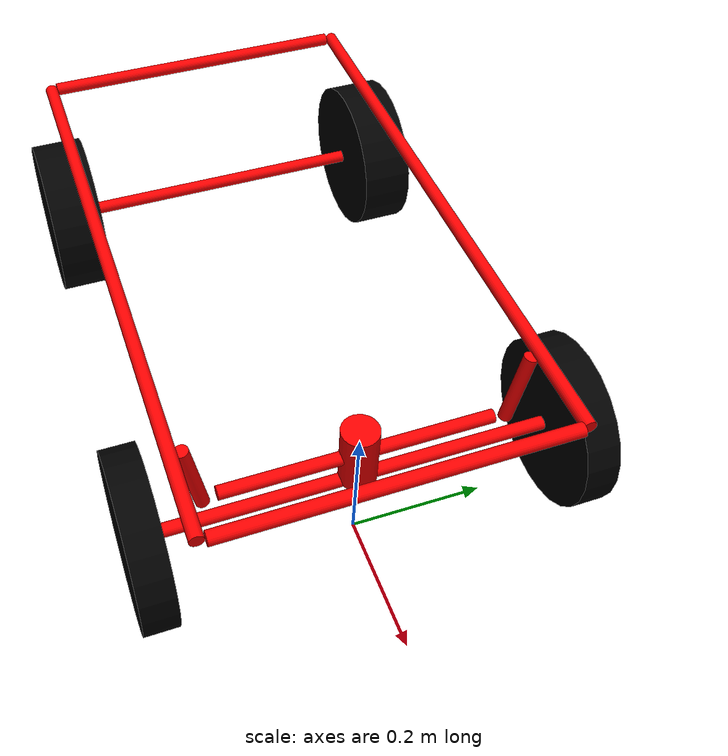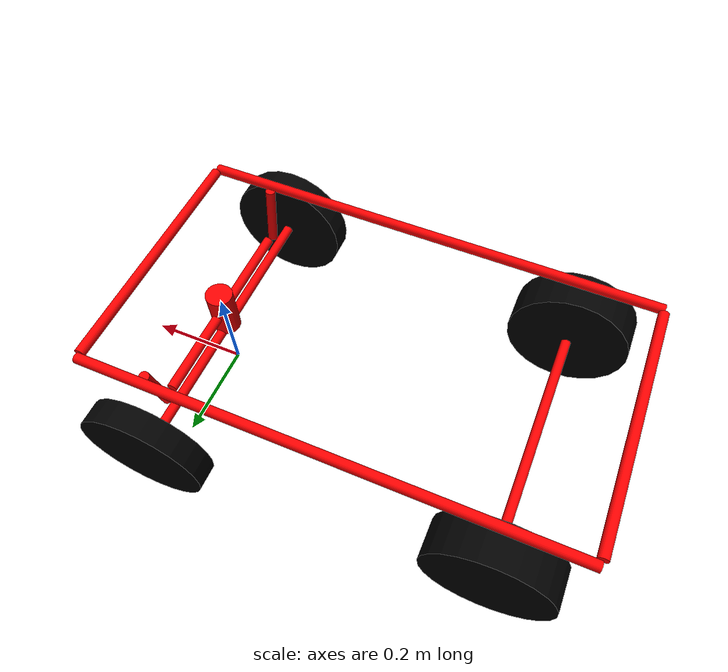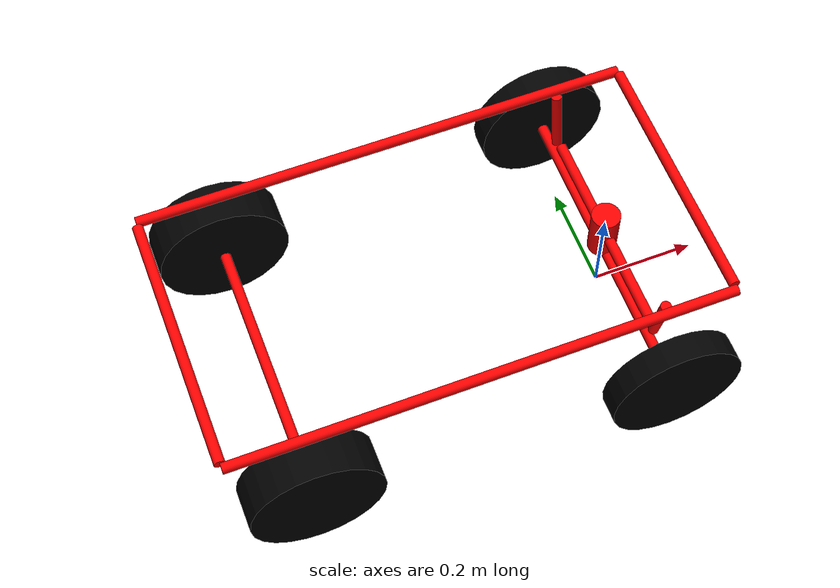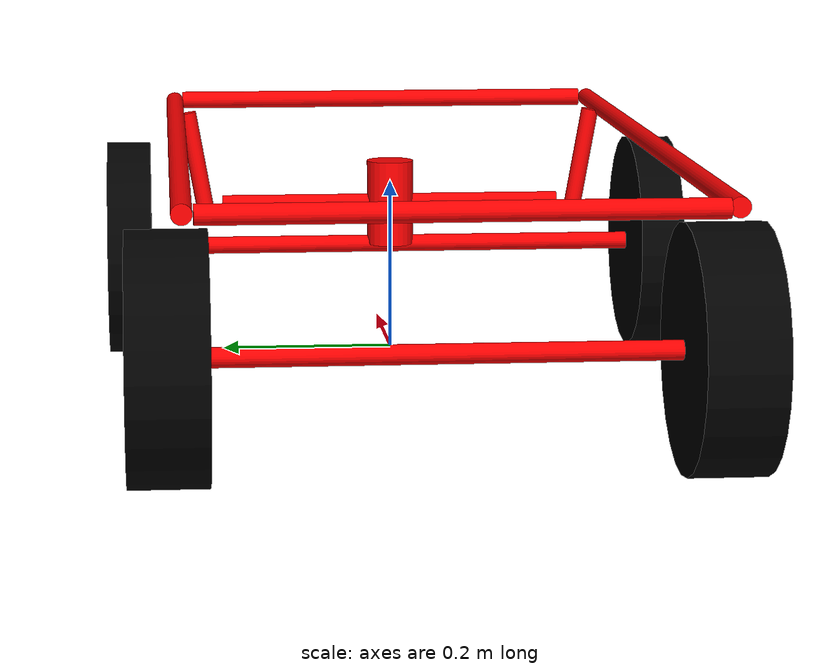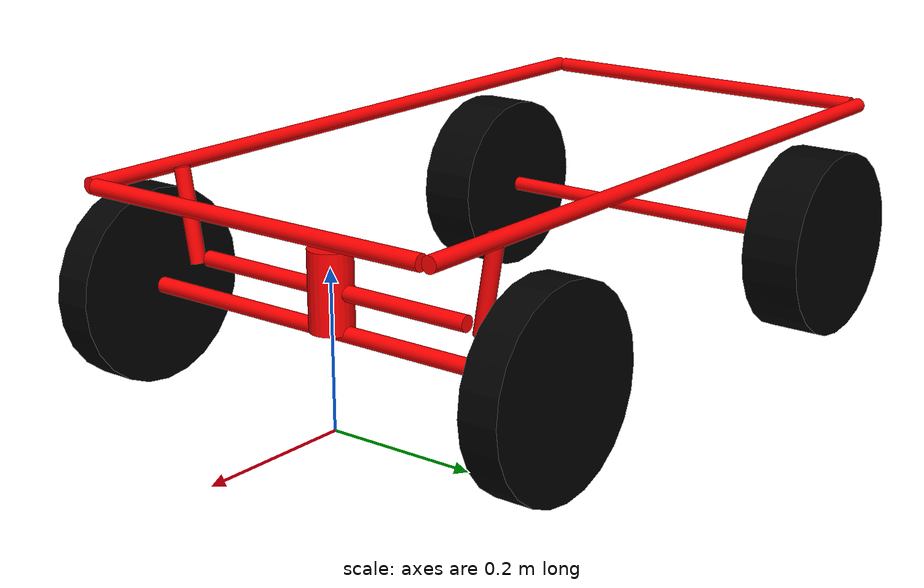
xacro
<?xml version="1.0"?>
<robot xmlns:xacro="http://www.ros.org/wiki/xacro" name="pilsbot">
  <xacro:property name="frame_length" value="0.94"/>
  <xacro:property name="frame_width" value="0.49"/>
  <xacro:property name="framebar_radius" value="0.01"/>
  <xacro:property name="wheel_radius" value="0.125"/>
  <xacro:property name="front_wheel_length" value="0.05"/>
  <xacro:property name="rear_wheel_length" value="0.08"/>

  <xacro:macro name="front_wheel" params="suffix axle_offset">
    <link name="front_wheel_${suffix}">
      <inertial>
        <origin xyz="0.0 0.0 0.0" rpy="0.0 1.57 1.57"/>
        <mass value="1.0"/>
        <inertia ixx="1.0" ixy="0.0" ixz="0.0" iyy="1.0" iyz="0.0" izz="1.0"/>
      </inertial>
      <visual name="">
        <origin xyz="0.0 0.0 0.0" rpy="0.0 1.57 1.57"/>
        <geometry>
          <cylinder radius="${wheel_radius}" length="${front_wheel_length}"/>
        </geometry>
        <material name="black">
          <color rgba="0.0 0.0 0.0 1.0"/>
        </material>
      </visual>
      <collision>
        <origin xyz="0.0 0.0 0.0" rpy="0.0 1.57 1.57"/>
        <geometry>
          <cylinder radius="${wheel_radius}" length="${front_wheel_length}"/>
        </geometry>
      </collision>
    </link>
    <joint name="front_wheel_${suffix}_joint" type="revolute">
      <parent link="front_axle"/>
      <child link="front_wheel_${suffix}"/>
      <axis xyz="0 1 0"/>
      <limit lower="-3.14159" upper="3.14159" velocity="50.0" effort="1000.0"/>
      <origin xyz="0 ${axle_offset} 0" rpy="0 0 0"/>
    </joint>
    <transmission name="front_wheel_${suffix}_trans">
      <type>transmission_interface/SimpleTransmission</type>
      <joint name="front_wheel_${suffix}_joint">
        <hardwareInterface>VelocityJointInterface</hardwareInterface>
      </joint>
      <actuator name="front_wheel_${suffix}_motor">
        <hardwareInterface>VelocityJointInterface</hardwareInterface>
        <mechanicalReduction>1</mechanicalReduction>
      </actuator>
    </transmission>
  </xacro:macro>

  <xacro:macro name="rear_wheel" params="suffix axle_offset">
    <link name="rear_wheel_${suffix}">
      <inertial>
        <origin xyz="0.0 0.0 0.0" rpy="0.0 1.57 1.57"/>
        <mass value="1.0"/>
        <inertia ixx="1.0" ixy="0.0" ixz="0.0" iyy="1.0" iyz="0.0" izz="1.0"/>
      </inertial>
      <visual name="">
        <origin xyz="0.0 0.0 0.0" rpy="0.0 1.57 1.57"/>
        <geometry>
          <cylinder radius="${wheel_radius}" length="${rear_wheel_length}"/>
        </geometry>
        <material name="black">
          <color rgba="0.0 0.0 0.0 1.0"/>
        </material>
      </visual>
      <collision>
        <origin xyz="0.0 0.0 0.0" rpy="0.0 1.57 1.57"/>
        <geometry>
          <cylinder radius="${wheel_radius}" length="${rear_wheel_length}"/>
        </geometry>
      </collision>
    </link>
    <joint name="rear_wheel_${suffix}_joint" type="revolute">
      <parent link="rear_axle"/>
      <child link="rear_wheel_${suffix}"/>
      <axis xyz="0 1 0"/>
      <limit lower="-3.14159" upper="3.14159" velocity="50.0" effort="1000.0"/>
      <origin xyz="0 ${axle_offset} 0" rpy="0 0 0"/>
    </joint>
  </xacro:macro>

  <xacro:macro name="axle" params="prefix length parent *origin">
    <link name="${prefix}_axle">
      <inertial>
        <origin xyz="0.0 0.0 0.0" rpy="0.0 1.57 1.57"/>
        <mass value="0.0"/>
        <inertia ixx="0.0" ixy="0.0" ixz="0.0" iyy="0.0" iyz="0.0" izz="0.0"/>
      </inertial>
      <visual name="front_axle_vis">
        <origin xyz="0.0 0.0 0.0" rpy="0.0 1.57 1.57"/>
        <geometry>
          <cylinder radius="${framebar_radius}" length="${length}"/>
        </geometry>
        <material name="">
          <color rgba="1.0 0.0 0.0 1.0"/>
        </material>
      </visual>
      <collision>
        <origin xyz="0.0 0.0 0.0" rpy="0.0 1.57 1.57"/>
        <geometry>
          <cylinder radius="${framebar_radius}" length="${length}"/>
        </geometry>
      </collision>
    </link>
    <joint name="${prefix}_axle_joint" type="fixed">
      <xacro:insert_block name="origin" />
      <parent link="${parent}"/>
      <child link="${prefix}_axle" />
    </joint>
  </xacro:macro>

  <xacro:macro name="frame_bar" params="prefix parent length *origin">
    <link name="${prefix}_frame_bar">
      <inertial>
        <origin xyz="0.0 0.0 0.0" rpy="0.0 1.57 1.57"/>
        <mass value="0.0"/>
        <inertia ixx="0.0" ixy="0.0" ixz="0.0" iyy="0.0" iyz="0.0" izz="0.0"/>
      </inertial>
      <visual name="front_frame_bar_vis">
        <origin xyz="0.0 0.0 0.0" rpy="0.0 1.57 1.57"/>
        <geometry>
          <cylinder radius="${framebar_radius}" length="${length}"/>
        </geometry>
        <material name="">
          <color rgba="1.0 0.0 0.0 1.0"/>
        </material>
      </visual>
      <collision>
        <origin xyz="0.0 0.0 0.0" rpy="0.0 1.57 1.57"/>
        <geometry>
          <cylinder radius="${framebar_radius}" length="${length}"/>
        </geometry>
      </collision>
    </link>
    <joint name="${prefix}_frame_bar_joint" type="fixed">
      <xacro:insert_block name="origin" />
      <parent link="${parent}"/>
      <child link="${prefix}_frame_bar" />
    </joint>
  </xacro:macro>

  <xacro:macro name="steering_axle_bar_vis" params="prefix length *origin">
    <visual name="${prefix}_steering_axle_bar">
      <xacro:insert_block name="origin"/>
      <geometry>
        <cylinder radius="${framebar_radius}" length="${length}"/>
      </geometry>
      <material name="">
        <color rgba="1.0 0.0 0.0 1.0"/>
      </material>
    </visual>
  </xacro:macro>

  <link name="base_link"/>

  <xacro:axle prefix="front" length="0.62" parent="base_link">
    <origin xyz="0 0 0.125" rpy="0 0 0"/>
  </xacro:axle>
  <xacro:axle prefix="rear" length="0.5" parent="front_axle">
    <origin xyz="-0.67 0 0" rpy="0 0 0"/>
  </xacro:axle>

  <link name="steering_axle">
    <inertial>
      <origin xyz="0.0 0.0 0.0" rpy="0.0 0.0 0.0"/>
      <mass value="0.0"/>
      <inertia ixx="0.0" ixy="0.0" ixz="0.0" iyy="0.0" iyz="0.0" izz="0.0"/>
    </inertial>
    <visual name="steering_axle">
      <origin xyz="0.0 0.0 0.0" rpy="0.0 0.0 0.0"/>
      <geometry>
        <cylinder radius="0.0275" length="0.1"/>
      </geometry>
      <material name="">
        <color rgba="1.0 0.0 0.0 1.0"/>
        <texture filename=""/>
      </material>
    </visual>
    <xacro:steering_axle_bar_vis prefix="left" length="0.2">
      <origin xyz="0.0 0.1 0.0" rpy="0.0 1.57 1.57"/>
    </xacro:steering_axle_bar_vis>
    <xacro:steering_axle_bar_vis prefix="left_up" length="0.12">
      <origin xyz="0.0 0.23 0.05" rpy="0.0 0.17453 1.57"/>
    </xacro:steering_axle_bar_vis>
    <xacro:steering_axle_bar_vis prefix="right" length="0.2">
      <origin xyz="0.0 -0.1 0.0" rpy="0.0 1.57 1.57"/>
    </xacro:steering_axle_bar_vis>
    <xacro:steering_axle_bar_vis prefix="right_up" length="0.12">
      <origin xyz="0.0 -0.23 0.05" rpy="0.0 -0.17453 1.57"/>
    </xacro:steering_axle_bar_vis>
    <collision>
      <origin xyz="0.0 0.0 0.0" rpy="0.0 0.0 0.0"/>
      <geometry>
        <cylinder radius="0.0275" length="0.1"/>
      </geometry>
    </collision>
  </link>

  <joint name="steering_axle_joint" type="revolute">
    <parent link="front_axle"/>
    <child link="steering_axle"/>
    <axis xyz="0 0 1"/>
    <limit lower="-3.14159" upper="3.14159" velocity="50.0" effort="1000.0"/>
    <origin xyz="0 0 0.05" rpy="0 0 0"/>
  </joint>

  <xacro:frame_bar prefix="front" parent="steering_axle" length="0.49">
    <origin xyz="0.13 0.0 0.11" rpy="0.0 0.0 0.0"/>
  </xacro:frame_bar>

  <xacro:frame_bar prefix="left" parent="front_frame_bar" length="0.94">
    <origin xyz="-0.47 0.255 0.0" rpy="0.0 0.0 1.57"/>
  </xacro:frame_bar>

  <xacro:frame_bar prefix="right" parent="front_frame_bar" length="0.94">
    <origin xyz="-0.47 -0.255 0.0" rpy="0.0 0.0 1.57"/>
  </xacro:frame_bar>

  <xacro:frame_bar prefix="back" parent="front_frame_bar" length="0.49">
    <origin xyz="-0.94 0.0 0.0" rpy="0.0 0.0 0.0"/>
  </xacro:frame_bar>

  <xacro:front_wheel suffix="left" axle_offset="0.31"/>
  <xacro:front_wheel suffix="right" axle_offset="-0.31"/>
  <xacro:rear_wheel suffix="left" axle_offset="0.27"/>
  <xacro:rear_wheel suffix="right" axle_offset="-0.27"/>
</robot>
